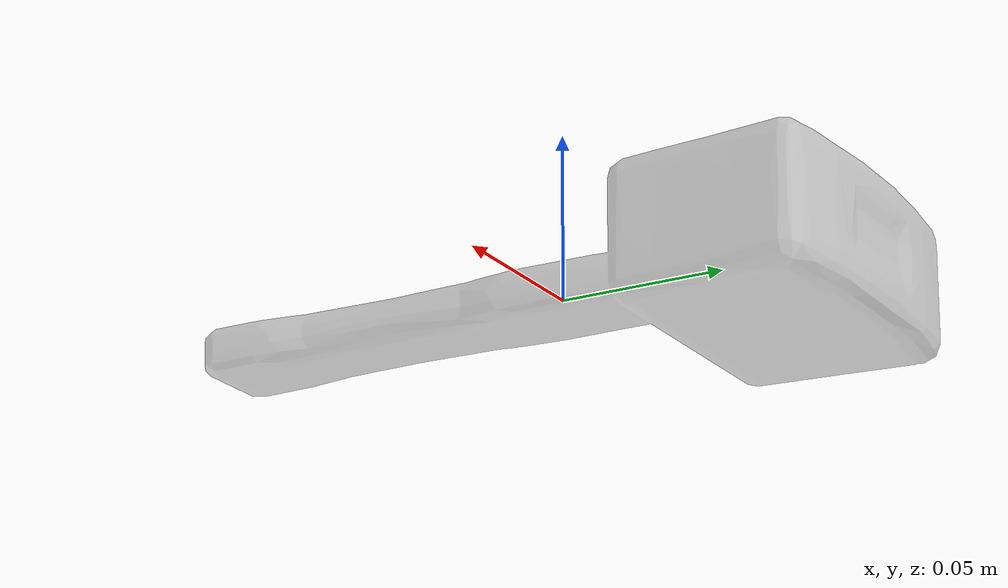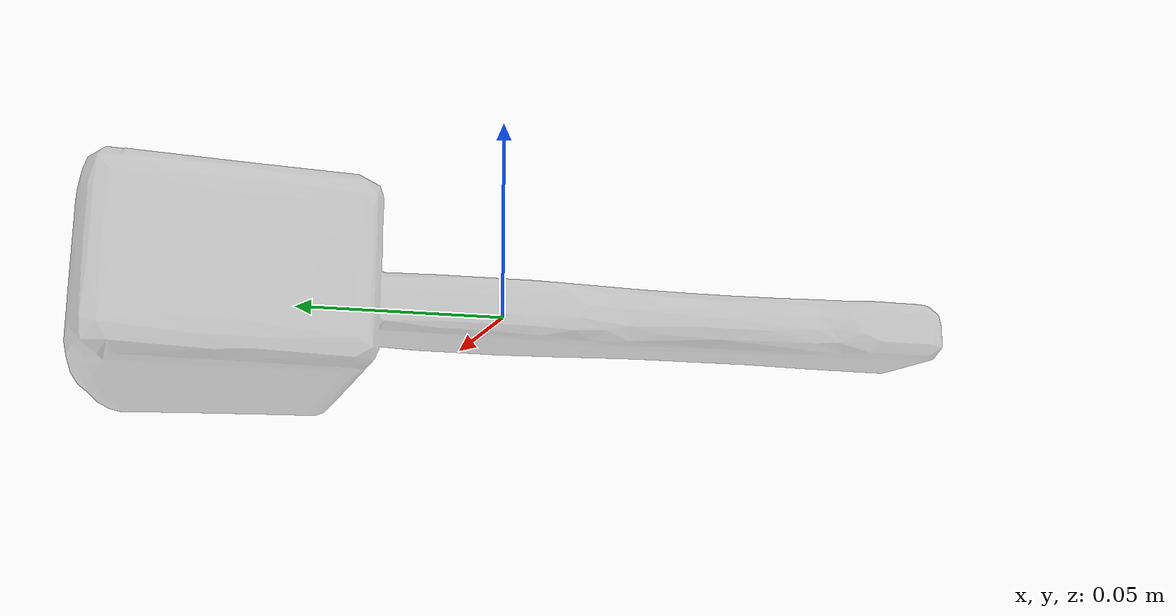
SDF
<?xml version='1.0'?>
<sdf version='1.4'>
  <model name="object">
    <link name='link'>
      <pose>0.0 0 0 0 0 0</pose>
      <inertial>
        <mass>3</mass>
        <inertia>
          <ixx>0.00768644051</ixx>
          <ixy>0</ixy>
          <ixz>0</ixz>
          <iyy>0.00202292875</iyy>
          <iyz>0</iyz>
          <izz>0.00901894778</izz>
        </inertia>
      </inertial>
      <collision name='c_bp_022'>
        <geometry>
          <mesh>
            <scale>1 1 1</scale>
            <uri>model://hammer_poisson_013/mesh/hammer_poisson_013.dae</uri>
          </mesh>
        </geometry>
        <surface>
          <contact>
            <ode>
              <kp>1000000</kp>
              <kd>100</kd>
              <max_vel>1000.0</max_vel>
              <min_depth>0.0</min_depth>
            </ode>
          </contact>
        </surface>
      </collision>

      <visual name='v_bp_022'>
        <geometry>
          <mesh>
            <scale>1 1 1</scale>
            <uri>model://hammer_poisson_013/mesh/hammer_poisson_013.dae</uri>
          </mesh>
        </geometry>
        <material>
          <script>
            <name>Gazebo/GreyTransparent</name>
            <uri>file://media/materials/scripts/gazebo.material</uri>
          </script>
        </material>
      </visual>

      <velocity_decay>
        <linear>0.0004</linear>
        <angular>0.0004</angular>
      </velocity_decay>
    </link>
  </model>
</sdf>
